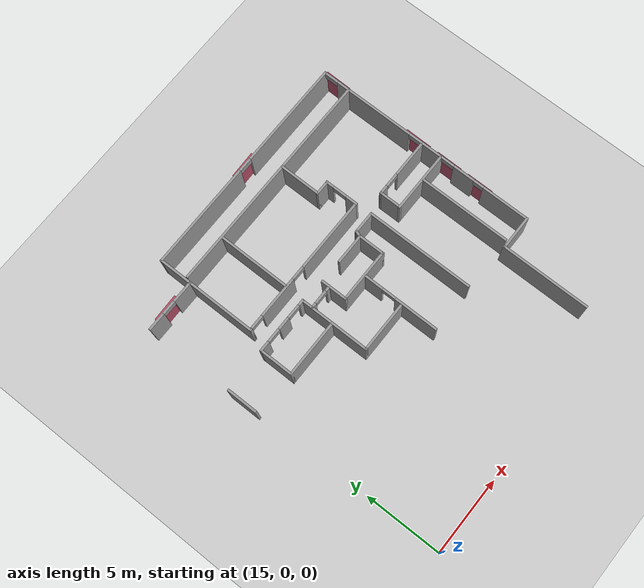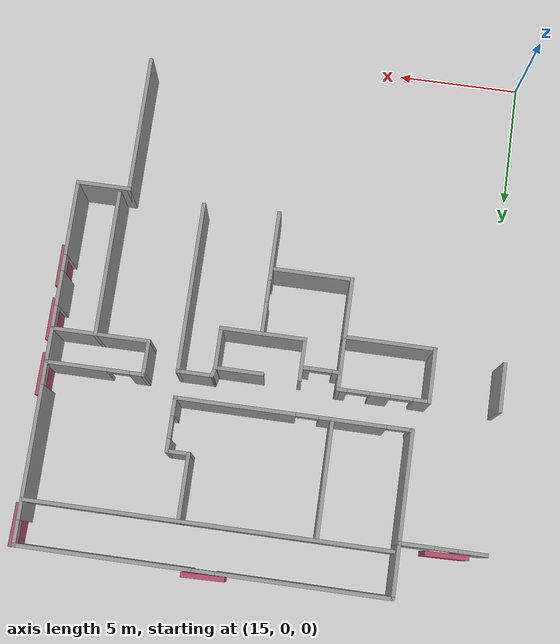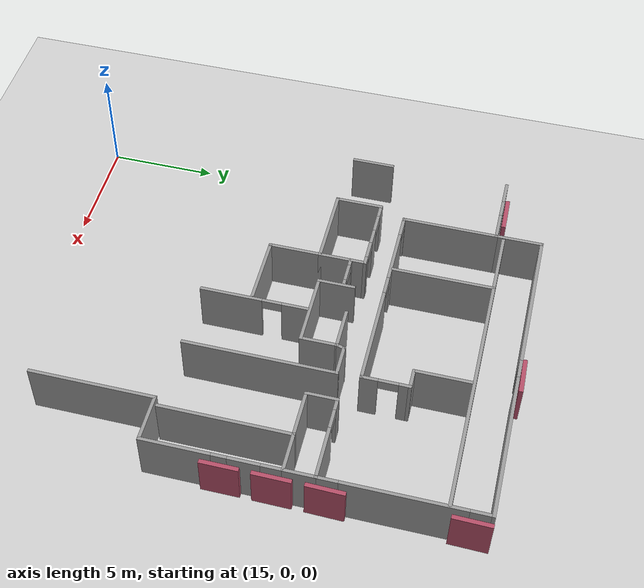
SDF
<sdf version="1.6">
 <world name="default">
  <model name="ground_plane">
   <static>1</static>
   <link name="link">
    <collision name="collision">
     <geometry><plane><normal>0 0 1</normal><size>100 100</size></plane></geometry>
     <surface><friction><ode><mu>100</mu><mu2>50</mu2></ode></friction></surface>
    </collision>
    <visual name="visual">
     <cast_shadows>0</cast_shadows>
     <geometry><plane><normal>0 0 1</normal><size>100 100</size></plane></geometry>
     <material>
      <script><uri>file://media/materials/scripts/gazebo.material</uri><name>Gazebo/Grey</name></script>
     </material>
    </visual>
   </link>
  </model>
  <model name="fin_se1f1.sdf">
   <pose>1.8125 -2.2901 0 0 -0 0</pose>
   <link name="Wall_12">
    <collision name="Wall_12_Collision">
     <geometry><box><size>5.75 0.15 2.5</size></box></geometry>
     <pose>0 0 1.25 0 -0 0</pose>
    </collision>
    <visual name="Wall_12_Visual">
     <pose>0 0 1.25 0 -0 0</pose>
     <geometry><box><size>5.75 0.15 2.5</size></box></geometry>
     <material>
      <script><uri>file://media/materials/scripts/gazebo.material</uri><name>Gazebo/Grey</name></script>
      <ambient>1 1 1 1</ambient>
     </material>
     <meta><layer>0</layer></meta>
    </visual>
    <pose>28.6504 6.82457 0 0 -0 1.5708</pose>
   </link>
   <link name="Wall_13">
    <collision name="Wall_13_Collision">
     <geometry><box><size>2.25 0.15 2.5</size></box></geometry>
     <pose>0 0 1.25 0 -0 0</pose>
    </collision>
    <visual name="Wall_13_Visual">
     <pose>0 0 1.25 0 -0 0</pose>
     <geometry><box><size>2.25 0.15 2.5</size></box></geometry>
     <material>
      <script><uri>file://media/materials/scripts/gazebo.material</uri><name>Gazebo/Grey</name></script>
      <ambient>1 1 1 1</ambient>
     </material>
     <meta><layer>0</layer></meta>
    </visual>
    <pose>29.7004 9.62457 0 0 -0 0</pose>
   </link>
   <link name="Wall_140">
    <collision name="Wall_140_Collision">
     <geometry><box><size>2 0.15 2.5</size></box></geometry>
     <pose>0 0 1.25 0 -0 0</pose>
    </collision>
    <visual name="Wall_140_Visual">
     <pose>0 0 1.25 0 -0 0</pose>
     <geometry><box><size>2 0.15 2.5</size></box></geometry>
     <material>
      <script><uri>file://media/materials/scripts/gazebo.material</uri><name>Gazebo/Grey</name></script>
      <ambient>1 1 1 1</ambient>
     </material>
     <meta><layer>0</layer></meta>
    </visual>
    <pose>12.848 15.6146 0 0 -0 1.5708</pose>
   </link>
   <link name="Wall_16">
    <pose>30.7504 16.9246 0 0 -0 1.5708</pose>
    <visual name="Wall_16_Visual_0">
     <pose>-5.81054 0 1.25 0 -0 0</pose>
     <geometry><box><size>3.12893 0.15 2.5</size></box></geometry>
     <material>
      <script><uri>file://media/materials/scripts/gazebo.material</uri><name>Gazebo/Grey</name></script>
      <ambient>1 1 1 1</ambient>
     </material>
     <meta><layer>0</layer></meta>
    </visual>
    <collision name="Wall_16_Collision_0">
     <geometry><box><size>3.12893 0.15 2.5</size></box></geometry>
     <pose>-5.81054 0 1.25 0 -0 0</pose>
    </collision>
    <visual name="Wall_16_Visual_1">
     <pose>-2.86079 0 1.25 0 -0 0</pose>
     <geometry><box><size>1.41306 0.15 2.5</size></box></geometry>
     <material>
      <script><uri>file://media/materials/scripts/gazebo.material</uri><name>Gazebo/Grey</name></script>
      <ambient>1 1 1 1</ambient>
     </material>
     <meta><layer>0</layer></meta>
    </visual>
    <collision name="Wall_16_Collision_1">
     <geometry><box><size>1.41306 0.15 2.5</size></box></geometry>
     <pose>-2.86079 0 1.25 0 -0 0</pose>
    </collision>
    <visual name="Wall_16_Visual_2">
     <pose>-0.547733 0 1.25 0 -0 0</pose>
     <geometry><box><size>1.41306 0.15 2.5</size></box></geometry>
     <material>
      <script><uri>file://media/materials/scripts/gazebo.material</uri><name>Gazebo/Grey</name></script>
      <ambient>1 1 1 1</ambient>
     </material>
     <meta><layer>0</layer></meta>
    </visual>
    <collision name="Wall_16_Collision_2">
     <geometry><box><size>1.41306 0.15 2.5</size></box></geometry>
     <pose>-0.547733 0 1.25 0 -0 0</pose>
    </collision>
    <visual name="Wall_16_Visual_3">
     <pose>3.70629 0 1.25 0 -0 0</pose>
     <geometry><box><size>5.29498 0.15 2.5</size></box></geometry>
     <material>
      <script><uri>file://media/materials/scripts/gazebo.material</uri><name>Gazebo/Grey</name></script>
      <ambient>1 1 1 1</ambient>
     </material>
     <meta><layer>0</layer></meta>
    </visual>
    <collision name="Wall_16_Collision_3">
     <geometry><box><size>5.29498 0.15 2.5</size></box></geometry>
     <pose>3.70629 0 1.25 0 -0 0</pose>
    </collision>
    <visual name="Wall_16_Visual_4">
     <pose>7.31439 0 1.25 0 -0 0</pose>
     <geometry><box><size>0.121222 0.15 2.5</size></box></geometry>
     <material>
      <script><uri>file://media/materials/scripts/gazebo.material</uri><name>Gazebo/Grey</name></script>
      <ambient>1 1 1 1</ambient>
     </material>
     <meta><layer>0</layer></meta>
    </visual>
    <collision name="Wall_16_Collision_4">
     <geometry><box><size>0.121222 0.15 2.5</size></box></geometry>
     <pose>7.31439 0 1.25 0 -0 0</pose>
    </collision>
    <visual name="Wall_16_Visual_5">
     <pose>-3.9067 0 2.25 0 -0 0</pose>
     <geometry><box><size>0.678751 0.15 0.5</size></box></geometry>
     <material>
      <script><uri>file://media/materials/scripts/gazebo.material</uri><name>Gazebo/Grey</name></script>
      <ambient>1 1 1 1</ambient>
     </material>
     <meta><layer>0</layer></meta>
    </visual>
    <collision name="Wall_16_Collision_5">
     <geometry><box><size>0.678751 0.15 0.5</size></box></geometry>
     <pose>-3.9067 0 2.25 0 -0 0</pose>
    </collision>
    <visual name="Wall_16_Visual_6">
     <pose>-1.70426 0 2.25 0 -0 0</pose>
     <geometry><box><size>0.9 0.15 0.5</size></box></geometry>
     <material>
      <script><uri>file://media/materials/scripts/gazebo.material</uri><name>Gazebo/Grey</name></script>
      <ambient>1 1 1 1</ambient>
     </material>
     <meta><layer>0</layer></meta>
    </visual>
    <collision name="Wall_16_Collision_6">
     <geometry><box><size>0.9 0.15 0.5</size></box></geometry>
     <pose>-1.70426 0 2.25 0 -0 0</pose>
    </collision>
    <visual name="Wall_16_Visual_7">
     <pose>0.608797 0 2.25 0 -0 0</pose>
     <geometry><box><size>0.9 0.15 0.5</size></box></geometry>
     <material>
      <script><uri>file://media/materials/scripts/gazebo.material</uri><name>Gazebo/Grey</name></script>
      <ambient>1 1 1 1</ambient>
     </material>
     <meta><layer>0</layer></meta>
    </visual>
    <collision name="Wall_16_Collision_7">
     <geometry><box><size>0.9 0.15 0.5</size></box></geometry>
     <pose>0.608797 0 2.25 0 -0 0</pose>
    </collision>
    <visual name="Wall_16_Visual_8">
     <pose>6.80378 0 2.25 0 -0 0</pose>
     <geometry><box><size>0.9 0.15 0.5</size></box></geometry>
     <material>
      <script><uri>file://media/materials/scripts/gazebo.material</uri><name>Gazebo/Grey</name></script>
      <ambient>1 1 1 1</ambient>
     </material>
     <meta><layer>0</layer></meta>
    </visual>
    <collision name="Wall_16_Collision_8">
     <geometry><box><size>0.9 0.15 0.5</size></box></geometry>
     <pose>6.80378 0 2.25 0 -0 0</pose>
    </collision>
   </link>
   <link name="Wall_17">
    <pose>23.4504 24.2246 0 0 -0 3.14159</pose>
    <visual name="Wall_17_Visual_0">
     <pose>-3.90372 0 1.25 0 -0 0</pose>
     <geometry><box><size>6.94256 0.15 2.5</size></box></geometry>
     <material>
      <script><uri>file://media/materials/scripts/gazebo.material</uri><name>Gazebo/Grey</name></script>
      <ambient>1 1 1 1</ambient>
     </material>
     <meta><layer>0</layer></meta>
    </visual>
    <collision name="Wall_17_Collision_0">
     <geometry><box><size>6.94256 0.15 2.5</size></box></geometry>
     <pose>-3.90372 0 1.25 0 -0 0</pose>
    </collision>
    <visual name="Wall_17_Visual_1">
     <pose>3.92128 0 1.25 0 -0 0</pose>
     <geometry><box><size>6.90744 0.15 2.5</size></box></geometry>
     <material>
      <script><uri>file://media/materials/scripts/gazebo.material</uri><name>Gazebo/Grey</name></script>
      <ambient>1 1 1 1</ambient>
     </material>
     <meta><layer>0</layer></meta>
    </visual>
    <collision name="Wall_17_Collision_1">
     <geometry><box><size>6.90744 0.15 2.5</size></box></geometry>
     <pose>3.92128 0 1.25 0 -0 0</pose>
    </collision>
    <visual name="Wall_17_Visual_2">
     <pose>0.017557 0 2.25 0 -0 0</pose>
     <geometry><box><size>0.9 0.15 0.5</size></box></geometry>
     <material>
      <script><uri>file://media/materials/scripts/gazebo.material</uri><name>Gazebo/Grey</name></script>
      <ambient>1 1 1 1</ambient>
     </material>
     <meta><layer>0</layer></meta>
    </visual>
    <collision name="Wall_17_Collision_2">
     <geometry><box><size>0.9 0.15 0.5</size></box></geometry>
     <pose>0.017557 0 2.25 0 -0 0</pose>
    </collision>
   </link>
   <link name="Wall_18">
    <collision name="Wall_18_Collision">
     <geometry><box><size>2.25 0.15 2.5</size></box></geometry>
     <pose>0 0 1.25 0 -0 0</pose>
    </collision>
    <visual name="Wall_18_Visual">
     <pose>0 0 1.25 0 -0 0</pose>
     <geometry><box><size>2.25 0.15 2.5</size></box></geometry>
     <material>
      <script><uri>file://media/materials/scripts/gazebo.material</uri><name>Gazebo/Grey</name></script>
      <ambient>1 1 1 1</ambient>
     </material>
     <meta><layer>0</layer></meta>
    </visual>
    <pose>16.1504 23.1746 0 0 0 -1.5708</pose>
   </link>
   <link name="Wall_19">
    <pose>14.4754 22.1246 0 0 -0 3.14159</pose>
    <visual name="Wall_19_Visual_0">
     <pose>-1.03305 0 1.25 0 -0 0</pose>
     <geometry><box><size>1.43389 0.15 2.5</size></box></geometry>
     <material>
      <script><uri>file://media/materials/scripts/gazebo.material</uri><name>Gazebo/Grey</name></script>
      <ambient>1 1 1 1</ambient>
     </material>
     <meta><layer>0</layer></meta>
    </visual>
    <collision name="Wall_19_Collision_0">
     <geometry><box><size>1.43389 0.15 2.5</size></box></geometry>
     <pose>-1.03305 0 1.25 0 -0 0</pose>
    </collision>
    <visual name="Wall_19_Visual_1">
     <pose>1.16695 0 1.25 0 -0 0</pose>
     <geometry><box><size>1.16611 0.15 2.5</size></box></geometry>
     <material>
      <script><uri>file://media/materials/scripts/gazebo.material</uri><name>Gazebo/Grey</name></script>
      <ambient>1 1 1 1</ambient>
     </material>
     <meta><layer>0</layer></meta>
    </visual>
    <collision name="Wall_19_Collision_1">
     <geometry><box><size>1.16611 0.15 2.5</size></box></geometry>
     <pose>1.16695 0 1.25 0 -0 0</pose>
    </collision>
    <visual name="Wall_19_Visual_2">
     <pose>0.133892 0 2.25 0 -0 0</pose>
     <geometry><box><size>0.9 0.15 0.5</size></box></geometry>
     <material>
      <script><uri>file://media/materials/scripts/gazebo.material</uri><name>Gazebo/Grey</name></script>
      <ambient>1 1 1 1</ambient>
     </material>
     <meta><layer>0</layer></meta>
    </visual>
    <collision name="Wall_19_Collision_2">
     <geometry><box><size>0.9 0.15 0.5</size></box></geometry>
     <pose>0.133892 0 2.25 0 -0 0</pose>
    </collision>
   </link>
   <link name="Wall_233">
    <pose>19.9645 15.9042 0 0 -0 0</pose>
    <visual name="Wall_233_Visual_0">
     <pose>-0.585512 0 1.25 0 -0 0</pose>
     <geometry><box><size>0.328976 0.15 2.5</size></box></geometry>
     <material>
      <script><uri>file://media/materials/scripts/gazebo.material</uri><name>Gazebo/Grey</name></script>
      <ambient>1 1 1 1</ambient>
     </material>
     <meta><layer>0</layer></meta>
    </visual>
    <collision name="Wall_233_Collision_0">
     <geometry><box><size>0.328976 0.15 2.5</size></box></geometry>
     <pose>-0.585512 0 1.25 0 -0 0</pose>
    </collision>
    <visual name="Wall_233_Visual_1">
     <pose>0.614488 0 1.25 0 -0 0</pose>
     <geometry><box><size>0.271024 0.15 2.5</size></box></geometry>
     <material>
      <script><uri>file://media/materials/scripts/gazebo.material</uri><name>Gazebo/Grey</name></script>
      <ambient>1 1 1 1</ambient>
     </material>
     <meta><layer>0</layer></meta>
    </visual>
    <collision name="Wall_233_Collision_1">
     <geometry><box><size>0.271024 0.15 2.5</size></box></geometry>
     <pose>0.614488 0 1.25 0 -0 0</pose>
    </collision>
    <visual name="Wall_233_Visual_2">
     <pose>0.028976 0 2.25 0 -0 0</pose>
     <geometry><box><size>0.9 0.15 0.5</size></box></geometry>
     <material>
      <script><uri>file://media/materials/scripts/gazebo.material</uri><name>Gazebo/Grey</name></script>
      <ambient>1 1 1 1</ambient>
     </material>
     <meta><layer>0</layer></meta>
    </visual>
    <collision name="Wall_233_Collision_2">
     <geometry><box><size>0.9 0.15 0.5</size></box></geometry>
     <pose>0.028976 0 2.25 0 -0 0</pose>
    </collision>
   </link>
   <link name="Wall_32">
    <collision name="Wall_32_Collision">
     <geometry><box><size>4 0.15 2.5</size></box></geometry>
     <pose>0 0 1.25 0 -0 0</pose>
    </collision>
    <visual name="Wall_32_Visual">
     <pose>0 0 1.25 0 -0 0</pose>
     <geometry><box><size>4 0.15 2.5</size></box></geometry>
     <material>
      <script><uri>file://media/materials/scripts/gazebo.material</uri><name>Gazebo/Grey</name></script>
      <ambient>1 1 1 1</ambient>
     </material>
     <meta><layer>0</layer></meta>
    </visual>
    <pose>28.8116 15.7048 0 0 -0 3.14159</pose>
   </link>
   <link name="Wall_33">
    <collision name="Wall_33_Collision">
     <geometry><box><size>1.5 0.15 2.5</size></box></geometry>
     <pose>0 0 1.25 0 -0 0</pose>
    </collision>
    <visual name="Wall_33_Visual">
     <pose>0 0 1.25 0 -0 0</pose>
     <geometry><box><size>1.5 0.15 2.5</size></box></geometry>
     <material>
      <script><uri>file://media/materials/scripts/gazebo.material</uri><name>Gazebo/Grey</name></script>
      <ambient>1 1 1 1</ambient>
     </material>
     <meta><layer>0</layer></meta>
    </visual>
    <pose>26.8866 16.3798 0 0 -0 1.5708</pose>
   </link>
   <link name="Wall_34">
    <pose>28.8116 17.0548 0 0 -0 0</pose>
    <visual name="Wall_34_Visual_0">
     <pose>-1.6918 0 1.25 0 -0 0</pose>
     <geometry><box><size>0.616404 0.15 2.5</size></box></geometry>
     <material>
      <script><uri>file://media/materials/scripts/gazebo.material</uri><name>Gazebo/Grey</name></script>
      <ambient>1 1 1 1</ambient>
     </material>
     <meta><layer>0</layer></meta>
    </visual>
    <collision name="Wall_34_Collision_0">
     <geometry><box><size>0.616404 0.15 2.5</size></box></geometry>
     <pose>-1.6918 0 1.25 0 -0 0</pose>
    </collision>
    <visual name="Wall_34_Visual_1">
     <pose>0.758202 0 1.25 0 -0 0</pose>
     <geometry><box><size>2.4836 0.15 2.5</size></box></geometry>
     <material>
      <script><uri>file://media/materials/scripts/gazebo.material</uri><name>Gazebo/Grey</name></script>
      <ambient>1 1 1 1</ambient>
     </material>
     <meta><layer>0</layer></meta>
    </visual>
    <collision name="Wall_34_Collision_1">
     <geometry><box><size>2.4836 0.15 2.5</size></box></geometry>
     <pose>0.758202 0 1.25 0 -0 0</pose>
    </collision>
    <visual name="Wall_34_Visual_2">
     <pose>-0.933596 0 2.25 0 -0 0</pose>
     <geometry><box><size>0.9 0.15 0.5</size></box></geometry>
     <material>
      <script><uri>file://media/materials/scripts/gazebo.material</uri><name>Gazebo/Grey</name></script>
      <ambient>1 1 1 1</ambient>
     </material>
     <meta><layer>0</layer></meta>
    </visual>
    <collision name="Wall_34_Collision_2">
     <geometry><box><size>0.9 0.15 0.5</size></box></geometry>
     <pose>-0.933596 0 2.25 0 -0 0</pose>
    </collision>
   </link>
   <link name="Wall_36">
    <collision name="Wall_36_Collision">
     <geometry><box><size>6 0.15 2.5</size></box></geometry>
     <pose>0 0 1.25 0 -0 0</pose>
    </collision>
    <visual name="Wall_36_Visual">
     <pose>0 0 1.25 0 -0 0</pose>
     <geometry><box><size>6 0.15 2.5</size></box></geometry>
     <material>
      <script><uri>file://media/materials/scripts/gazebo.material</uri><name>Gazebo/Grey</name></script>
      <ambient>1 1 1 1</ambient>
     </material>
     <meta><layer>0</layer></meta>
    </visual>
    <pose>29.0138 12.7798 0 0 0 -1.5708</pose>
   </link>
   <link name="Wall_38">
    <pose>17.4309 16.5662 0 0 -0 3.14159</pose>
    <visual name="Wall_38_Visual_0">
     <pose>-1.65937 0 1.25 0 -0 0</pose>
     <geometry><box><size>0.431262 0.15 2.5</size></box></geometry>
     <material>
      <script><uri>file://media/materials/scripts/gazebo.material</uri><name>Gazebo/Grey</name></script>
      <ambient>1 1 1 1</ambient>
     </material>
     <meta><layer>0</layer></meta>
    </visual>
    <collision name="Wall_38_Collision_0">
     <geometry><box><size>0.431262 0.15 2.5</size></box></geometry>
     <pose>-1.65937 0 1.25 0 -0 0</pose>
    </collision>
    <visual name="Wall_38_Visual_1">
     <pose>-0.138911 0 1.25 0 -0 0</pose>
     <geometry><box><size>0.809654 0.15 2.5</size></box></geometry>
     <material>
      <script><uri>file://media/materials/scripts/gazebo.material</uri><name>Gazebo/Grey</name></script>
      <ambient>1 1 1 1</ambient>
     </material>
     <meta><layer>0</layer></meta>
    </visual>
    <collision name="Wall_38_Collision_1">
     <geometry><box><size>0.809654 0.15 2.5</size></box></geometry>
     <pose>-0.138911 0 1.25 0 -0 0</pose>
    </collision>
    <visual name="Wall_38_Visual_2">
     <pose>1.52046 0 1.25 0 -0 0</pose>
     <geometry><box><size>0.709084 0.15 2.5</size></box></geometry>
     <material>
      <script><uri>file://media/materials/scripts/gazebo.material</uri><name>Gazebo/Grey</name></script>
      <ambient>1 1 1 1</ambient>
     </material>
     <meta><layer>0</layer></meta>
    </visual>
    <collision name="Wall_38_Collision_2">
     <geometry><box><size>0.709084 0.15 2.5</size></box></geometry>
     <pose>1.52046 0 1.25 0 -0 0</pose>
    </collision>
    <visual name="Wall_38_Visual_3">
     <pose>-0.993738 0 2.25 0 -0 0</pose>
     <geometry><box><size>0.9 0.15 0.5</size></box></geometry>
     <material>
      <script><uri>file://media/materials/scripts/gazebo.material</uri><name>Gazebo/Grey</name></script>
      <ambient>1 1 1 1</ambient>
     </material>
     <meta><layer>0</layer></meta>
    </visual>
    <collision name="Wall_38_Collision_3">
     <geometry><box><size>0.9 0.15 0.5</size></box></geometry>
     <pose>-0.993738 0 2.25 0 -0 0</pose>
    </collision>
    <visual name="Wall_38_Visual_4">
     <pose>0.715916 0 2.25 0 -0 0</pose>
     <geometry><box><size>0.9 0.15 0.5</size></box></geometry>
     <material>
      <script><uri>file://media/materials/scripts/gazebo.material</uri><name>Gazebo/Grey</name></script>
      <ambient>1 1 1 1</ambient>
     </material>
     <meta><layer>0</layer></meta>
    </visual>
    <collision name="Wall_38_Collision_4">
     <geometry><box><size>0.9 0.15 0.5</size></box></geometry>
     <pose>0.715916 0 2.25 0 -0 0</pose>
    </collision>
   </link>
   <link name="Wall_39">
    <collision name="Wall_39_Collision">
     <geometry><box><size>2.25 0.15 2.5</size></box></geometry>
     <pose>0 0 1.25 0 -0 0</pose>
    </collision>
    <visual name="Wall_39_Visual">
     <pose>0 0 1.25 0 -0 0</pose>
     <geometry><box><size>2.25 0.15 2.5</size></box></geometry>
     <material>
      <script><uri>file://media/materials/scripts/gazebo.material</uri><name>Gazebo/Grey</name></script>
      <ambient>1 1 1 1</ambient>
     </material>
     <meta><layer>0</layer></meta>
    </visual>
    <pose>15.6309 15.5162 0 0 0 -1.5708</pose>
   </link>
   <link name="Wall_40">
    <collision name="Wall_40_Collision">
     <geometry><box><size>3.75 0.15 2.5</size></box></geometry>
     <pose>0 0 1.25 0 -0 0</pose>
    </collision>
    <visual name="Wall_40_Visual">
     <pose>0 0 1.25 0 -0 0</pose>
     <geometry><box><size>3.75 0.15 2.5</size></box></geometry>
     <material>
      <script><uri>file://media/materials/scripts/gazebo.material</uri><name>Gazebo/Grey</name></script>
      <ambient>1 1 1 1</ambient>
     </material>
     <meta><layer>0</layer></meta>
    </visual>
    <pose>17.4309 14.4662 0 0 -0 0</pose>
   </link>
   <link name="Wall_41">
    <collision name="Wall_41_Collision">
     <geometry><box><size>2.25 0.15 2.5</size></box></geometry>
     <pose>0 0 1.25 0 -0 0</pose>
    </collision>
    <visual name="Wall_41_Visual">
     <pose>0 0 1.25 0 -0 0</pose>
     <geometry><box><size>2.25 0.15 2.5</size></box></geometry>
     <material>
      <script><uri>file://media/materials/scripts/gazebo.material</uri><name>Gazebo/Grey</name></script>
      <ambient>1 1 1 1</ambient>
     </material>
     <meta><layer>0</layer></meta>
    </visual>
    <pose>19.2309 15.5162 0 0 -0 1.5708</pose>
   </link>
   <link name="Wall_43">
    <collision name="Wall_43_Collision">
     <geometry><box><size>1.75 0.15 2.5</size></box></geometry>
     <pose>0 0 1.25 0 -0 0</pose>
    </collision>
    <visual name="Wall_43_Visual">
     <pose>0 0 1.25 0 -0 0</pose>
     <geometry><box><size>1.75 0.15 2.5</size></box></geometry>
     <material>
      <script><uri>file://media/materials/scripts/gazebo.material</uri><name>Gazebo/Grey</name></script>
      <ambient>1 1 1 1</ambient>
     </material>
     <meta><layer>0</layer></meta>
    </visual>
    <pose>20.7691 15.5816 0 0 0 -1.5708</pose>
   </link>
   <link name="Wall_44">
    <collision name="Wall_44_Collision">
     <geometry><box><size>3.5 0.15 2.5</size></box></geometry>
     <pose>0 0 1.25 0 -0 0</pose>
    </collision>
    <visual name="Wall_44_Visual">
     <pose>0 0 1.25 0 -0 0</pose>
     <geometry><box><size>3.5 0.15 2.5</size></box></geometry>
     <material>
      <script><uri>file://media/materials/scripts/gazebo.material</uri><name>Gazebo/Grey</name></script>
      <ambient>1 1 1 1</ambient>
     </material>
     <meta><layer>0</layer></meta>
    </visual>
    <pose>22.4441 14.7816 0 0 -0 0</pose>
   </link>
   <link name="Wall_45">
    <collision name="Wall_45_Collision">
     <geometry><box><size>1.75 0.15 2.5</size></box></geometry>
     <pose>0 0 1.25 0 -0 0</pose>
    </collision>
    <visual name="Wall_45_Visual">
     <pose>0 0 1.25 0 -0 0</pose>
     <geometry><box><size>1.75 0.15 2.5</size></box></geometry>
     <material>
      <script><uri>file://media/materials/scripts/gazebo.material</uri><name>Gazebo/Grey</name></script>
      <ambient>1 1 1 1</ambient>
     </material>
     <meta><layer>0</layer></meta>
    </visual>
    <pose>24.1191 15.5816 0 0 -0 1.5708</pose>
   </link>
   <link name="Wall_46">
    <collision name="Wall_46_Collision">
     <geometry><box><size>2 0.15 2.5</size></box></geometry>
     <pose>0 0 1.25 0 -0 0</pose>
    </collision>
    <visual name="Wall_46_Visual">
     <pose>0 0 1.25 0 -0 0</pose>
     <geometry><box><size>2 0.15 2.5</size></box></geometry>
     <material>
      <script><uri>file://media/materials/scripts/gazebo.material</uri><name>Gazebo/Grey</name></script>
      <ambient>1 1 1 1</ambient>
     </material>
     <meta><layer>0</layer></meta>
    </visual>
    <pose>23.1941 16.3816 0 0 -0 3.14159</pose>
   </link>
   <link name="Wall_48">
    <collision name="Wall_48_Collision">
     <geometry><box><size>0.5 0.15 2.5</size></box></geometry>
     <pose>0 0 1.25 0 -0 0</pose>
    </collision>
    <visual name="Wall_48_Visual">
     <pose>0 0 1.25 0 -0 0</pose>
     <geometry><box><size>0.5 0.15 2.5</size></box></geometry>
     <material>
      <script><uri>file://media/materials/scripts/gazebo.material</uri><name>Gazebo/Grey</name></script>
      <ambient>1 1 1 1</ambient>
     </material>
     <meta><layer>0</layer></meta>
    </visual>
    <pose>24.1643 16.5507 0 0 -0 1.309</pose>
   </link>
   <link name="Wall_49">
    <collision name="Wall_49_Collision">
     <geometry><box><size>1.5 0.15 2.5</size></box></geometry>
     <pose>0 0 1.25 0 -0 0</pose>
    </collision>
    <visual name="Wall_49_Visual">
     <pose>0 0 1.25 0 -0 0</pose>
     <geometry><box><size>1.5 0.15 2.5</size></box></geometry>
     <material>
      <script><uri>file://media/materials/scripts/gazebo.material</uri><name>Gazebo/Grey</name></script>
      <ambient>1 1 1 1</ambient>
     </material>
     <meta><layer>0</layer></meta>
    </visual>
    <pose>24.8846 16.7197 0 0 -0 0</pose>
   </link>
   <link name="Wall_50">
    <collision name="Wall_50_Collision">
     <geometry><box><size>7 0.15 2.5</size></box></geometry>
     <pose>0 0 1.25 0 -0 0</pose>
    </collision>
    <visual name="Wall_50_Visual">
     <pose>0 0 1.25 0 -0 0</pose>
     <geometry><box><size>7 0.15 2.5</size></box></geometry>
     <material>
      <script><uri>file://media/materials/scripts/gazebo.material</uri><name>Gazebo/Grey</name></script>
      <ambient>1 1 1 1</ambient>
     </material>
     <meta><layer>0</layer></meta>
    </visual>
    <pose>25.5596 13.2947 0 0 0 -1.5708</pose>
   </link>
   <link name="Wall_52">
    <collision name="Wall_52_Collision">
     <geometry><box><size>2.5 0.15 2.5</size></box></geometry>
     <pose>0 0 1.25 0 -0 0</pose>
    </collision>
    <visual name="Wall_52_Visual">
     <pose>0 0 1.25 0 -0 0</pose>
     <geometry><box><size>2.5 0.15 2.5</size></box></geometry>
     <material>
      <script><uri>file://media/materials/scripts/gazebo.material</uri><name>Gazebo/Grey</name></script>
      <ambient>1 1 1 1</ambient>
     </material>
     <meta><layer>0</layer></meta>
    </visual>
    <pose>19.2309 13.2912 0 0 0 -1.5708</pose>
   </link>
   <link name="Wall_53">
    <collision name="Wall_53_Collision">
     <geometry><box><size>3.25 0.15 2.5</size></box></geometry>
     <pose>0 0 1.25 0 -0 0</pose>
    </collision>
    <visual name="Wall_53_Visual">
     <pose>0 0 1.25 0 -0 0</pose>
     <geometry><box><size>3.25 0.15 2.5</size></box></geometry>
     <material>
      <script><uri>file://media/materials/scripts/gazebo.material</uri><name>Gazebo/Grey</name></script>
      <ambient>1 1 1 1</ambient>
     </material>
     <meta><layer>0</layer></meta>
    </visual>
    <pose>20.7809 12.1162 0 0 -0 0</pose>
   </link>
   <link name="Wall_55">
    <pose>22.4918 12.2338 0 0 0 -1.5708</pose>
    <visual name="Wall_55_Visual_0">
     <pose>-1.8821 0 1.25 0 -0 0</pose>
     <geometry><box><size>1.2358 0.15 2.5</size></box></geometry>
     <material>
      <script><uri>file://media/materials/scripts/gazebo.material</uri><name>Gazebo/Grey</name></script>
      <ambient>1 1 1 1</ambient>
     </material>
     <meta><layer>0</layer></meta>
    </visual>
    <collision name="Wall_55_Collision_0">
     <geometry><box><size>1.2358 0.15 2.5</size></box></geometry>
     <pose>-1.8821 0 1.25 0 -0 0</pose>
    </collision>
    <visual name="Wall_55_Visual_1">
     <pose>1.0679 0 1.25 0 -0 0</pose>
     <geometry><box><size>2.8642 0.15 2.5</size></box></geometry>
     <material>
      <script><uri>file://media/materials/scripts/gazebo.material</uri><name>Gazebo/Grey</name></script>
      <ambient>1 1 1 1</ambient>
     </material>
     <meta><layer>0</layer></meta>
    </visual>
    <collision name="Wall_55_Collision_1">
     <geometry><box><size>2.8642 0.15 2.5</size></box></geometry>
     <pose>1.0679 0 1.25 0 -0 0</pose>
    </collision>
    <visual name="Wall_55_Visual_2">
     <pose>-0.814197 0 2.25 0 -0 0</pose>
     <geometry><box><size>0.9 0.15 0.5</size></box></geometry>
     <material>
      <script><uri>file://media/materials/scripts/gazebo.material</uri><name>Gazebo/Grey</name></script>
      <ambient>1 1 1 1</ambient>
     </material>
     <meta><layer>0</layer></meta>
    </visual>
    <collision name="Wall_55_Collision_2">
     <geometry><box><size>0.9 0.15 0.5</size></box></geometry>
     <pose>-0.814197 0 2.25 0 -0 0</pose>
    </collision>
   </link>
   <link name="Wall_57">
    <collision name="Wall_57_Collision">
     <geometry><box><size>4.5 0.15 2.5</size></box></geometry>
     <pose>0 0 1.25 0 -0 0</pose>
    </collision>
    <visual name="Wall_57_Visual">
     <pose>0 0 1.25 0 -0 0</pose>
     <geometry><box><size>4.5 0.15 2.5</size></box></geometry>
     <material>
      <script><uri>file://media/materials/scripts/gazebo.material</uri><name>Gazebo/Grey</name></script>
      <ambient>1 1 1 1</ambient>
     </material>
     <meta><layer>0</layer></meta>
    </visual>
    <pose>16.1504 19.9496 0 0 0 -1.5708</pose>
   </link>
   <link name="Wall_58">
    <pose>20.8254 17.7746 0 0 -0 0</pose>
    <visual name="Wall_58_Visual_0">
     <pose>-4.65524 0 1.25 0 -0 0</pose>
     <geometry><box><size>0.189509 0.15 2.5</size></box></geometry>
     <material>
      <script><uri>file://media/materials/scripts/gazebo.material</uri><name>Gazebo/Grey</name></script>
      <ambient>1 1 1 1</ambient>
     </material>
     <meta><layer>0</layer></meta>
    </visual>
    <collision name="Wall_58_Collision_0">
     <geometry><box><size>0.189509 0.15 2.5</size></box></geometry>
     <pose>-4.65524 0 1.25 0 -0 0</pose>
    </collision>
    <visual name="Wall_58_Visual_1">
     <pose>-2.32038 0 1.25 0 -0 0</pose>
     <geometry><box><size>2.68022 0.15 2.5</size></box></geometry>
     <material>
      <script><uri>file://media/materials/scripts/gazebo.material</uri><name>Gazebo/Grey</name></script>
      <ambient>1 1 1 1</ambient>
     </material>
     <meta><layer>0</layer></meta>
    </visual>
    <collision name="Wall_58_Collision_1">
     <geometry><box><size>2.68022 0.15 2.5</size></box></geometry>
     <pose>-2.32038 0 1.25 0 -0 0</pose>
    </collision>
    <visual name="Wall_58_Visual_2">
     <pose>2.33486 0 1.25 0 -0 0</pose>
     <geometry><box><size>4.83028 0.15 2.5</size></box></geometry>
     <material>
      <script><uri>file://media/materials/scripts/gazebo.material</uri><name>Gazebo/Grey</name></script>
      <ambient>1 1 1 1</ambient>
     </material>
     <meta><layer>0</layer></meta>
    </visual>
    <collision name="Wall_58_Collision_2">
     <geometry><box><size>4.83028 0.15 2.5</size></box></geometry>
     <pose>2.33486 0 1.25 0 -0 0</pose>
    </collision>
    <visual name="Wall_58_Visual_3">
     <pose>-4.11049 0 2.25 0 -0 0</pose>
     <geometry><box><size>0.9 0.15 0.5</size></box></geometry>
     <material>
      <script><uri>file://media/materials/scripts/gazebo.material</uri><name>Gazebo/Grey</name></script>
      <ambient>1 1 1 1</ambient>
     </material>
     <meta><layer>0</layer></meta>
    </visual>
    <collision name="Wall_58_Collision_3">
     <geometry><box><size>0.9 0.15 0.5</size></box></geometry>
     <pose>-4.11049 0 2.25 0 -0 0</pose>
    </collision>
    <visual name="Wall_58_Visual_4">
     <pose>-0.530275 0 2.25 0 -0 0</pose>
     <geometry><box><size>0.9 0.15 0.5</size></box></geometry>
     <material>
      <script><uri>file://media/materials/scripts/gazebo.material</uri><name>Gazebo/Grey</name></script>
      <ambient>1 1 1 1</ambient>
     </material>
     <meta><layer>0</layer></meta>
    </visual>
    <collision name="Wall_58_Collision_4">
     <geometry><box><size>0.9 0.15 0.5</size></box></geometry>
     <pose>-0.530275 0 2.25 0 -0 0</pose>
    </collision>
   </link>
   <link name="Wall_59">
    <pose>25.5004 18.8246 0 0 -0 1.5708</pose>
    <visual name="Wall_59_Visual_0">
     <pose>-0.729127 0 1.25 0 -0 0</pose>
     <geometry><box><size>0.791747 0.15 2.5</size></box></geometry>
     <material>
      <script><uri>file://media/materials/scripts/gazebo.material</uri><name>Gazebo/Grey</name></script>
      <ambient>1 1 1 1</ambient>
     </material>
     <meta><layer>0</layer></meta>
    </visual>
    <collision name="Wall_59_Collision_0">
     <geometry><box><size>0.791747 0.15 2.5</size></box></geometry>
     <pose>-0.729127 0 1.25 0 -0 0</pose>
    </collision>
    <visual name="Wall_59_Visual_1">
     <pose>0.845873 0 1.25 0 -0 0</pose>
     <geometry><box><size>0.558253 0.15 2.5</size></box></geometry>
     <material>
      <script><uri>file://media/materials/scripts/gazebo.material</uri><name>Gazebo/Grey</name></script>
      <ambient>1 1 1 1</ambient>
     </material>
     <meta><layer>0</layer></meta>
    </visual>
    <collision name="Wall_59_Collision_1">
     <geometry><box><size>0.558253 0.15 2.5</size></box></geometry>
     <pose>0.845873 0 1.25 0 -0 0</pose>
    </collision>
    <visual name="Wall_59_Visual_2">
     <pose>0.116747 0 2.25 0 -0 0</pose>
     <geometry><box><size>0.9 0.15 0.5</size></box></geometry>
     <material>
      <script><uri>file://media/materials/scripts/gazebo.material</uri><name>Gazebo/Grey</name></script>
      <ambient>1 1 1 1</ambient>
     </material>
     <meta><layer>0</layer></meta>
    </visual>
    <collision name="Wall_59_Collision_2">
     <geometry><box><size>0.9 0.15 0.5</size></box></geometry>
     <pose>0.116747 0 2.25 0 -0 0</pose>
    </collision>
   </link>
   <link name="Wall_60">
    <collision name="Wall_60_Collision">
     <geometry><box><size>1 0.15 2.5</size></box></geometry>
     <pose>0 0 1.25 0 -0 0</pose>
    </collision>
    <visual name="Wall_60_Visual">
     <pose>0 0 1.25 0 -0 0</pose>
     <geometry><box><size>1 0.15 2.5</size></box></geometry>
     <material>
      <script><uri>file://media/materials/scripts/gazebo.material</uri><name>Gazebo/Grey</name></script>
      <ambient>1 1 1 1</ambient>
     </material>
     <meta><layer>0</layer></meta>
    </visual>
    <pose>25.0754 19.8746 0 0 -0 3.14159</pose>
   </link>
   <link name="Wall_61">
    <collision name="Wall_61_Collision">
     <geometry><box><size>2.75 0.15 2.5</size></box></geometry>
     <pose>0 0 1.25 0 -0 0</pose>
    </collision>
    <visual name="Wall_61_Visual">
     <pose>0 0 1.25 0 -0 0</pose>
     <geometry><box><size>2.75 0.15 2.5</size></box></geometry>
     <material>
      <script><uri>file://media/materials/scripts/gazebo.material</uri><name>Gazebo/Grey</name></script>
      <ambient>1 1 1 1</ambient>
     </material>
     <meta><layer>0</layer></meta>
    </visual>
    <pose>24.6504 21.1746 0 0 -0 1.5708</pose>
   </link>
   <link name="Wall_63">
    <collision name="Wall_63_Collision">
     <geometry><box><size>14.5 0.15 2.5</size></box></geometry>
     <pose>0 0 1.25 0 -0 0</pose>
    </collision>
    <visual name="Wall_63_Visual">
     <pose>0 0 1.25 0 -0 0</pose>
     <geometry><box><size>14.5 0.15 2.5</size></box></geometry>
     <material>
      <script><uri>file://media/materials/scripts/gazebo.material</uri><name>Gazebo/Grey</name></script>
      <ambient>1 1 1 1</ambient>
     </material>
     <meta><layer>0</layer></meta>
    </visual>
    <pose>23.514 22.4729 0 0 -0 0</pose>
   </link>
   <link name="Wall_65">
    <collision name="Wall_65_Collision">
     <geometry><box><size>4.75 0.15 2.5</size></box></geometry>
     <pose>0 0 1.25 0 -0 0</pose>
    </collision>
    <visual name="Wall_65_Visual">
     <pose>0 0 1.25 0 -0 0</pose>
     <geometry><box><size>4.75 0.15 2.5</size></box></geometry>
     <material>
      <script><uri>file://media/materials/scripts/gazebo.material</uri><name>Gazebo/Grey</name></script>
      <ambient>1 1 1 1</ambient>
     </material>
     <meta><layer>0</layer></meta>
    </visual>
    <pose>19.2924 20.1729 0 0 0 -1.5708</pose>
   </link>
   <static>1</static>
  </model>
  <model name="doorOutside_clone_6">
   <link name="link">
    <pose>0.155539 -0.366282 0.216958 0 -0 0</pose>
    <inertial>
     <mass>2.13199</mass>
     <inertia>
      <ixx>0.452656</ixx>
      <ixy>0</ixy>
      <ixz>0</ixz>
      <iyy>0.796738</iyy>
      <iyz>0</iyz>
      <izz>0.699414</izz>
     </inertia>
    </inertial>
    <visual name="visual">
     <geometry><box><size>1.71368 0.198843 2.05986</size></box></geometry>
     <material>
      <script><name>Gazebo/Grey</name><uri>file://media/materials/scripts/gazebo.material</uri></script>
      <ambient>0.7 0.3 0.4 1</ambient>
      <diffuse>0.7 0.7 0.7 1</diffuse>
      <specular>0.01 0.01 0.01 1</specular>
      <emissive>0 0 0 1</emissive>
      <shader type="vertex"><normal_map>__default__</normal_map></shader>
      <lighting>0</lighting>
     </material>
    </visual>
    <collision name="collision">
     <geometry><box><size>1.71368 0.198843 2.05986</size></box></geometry>
     <surface>
      <friction>
       <ode><mu>1</mu><mu2>1</mu2><fdir1>0 0 0</fdir1><slip1>0</slip1><slip2>0</slip2></ode>
       <torsional>
        <coefficient>1</coefficient>
        <patch_radius>0</patch_radius>
        <surface_radius>0</surface_radius>
        <use_patch_radius>1</use_patch_radius>
        <ode><slip>0</slip></ode>
       </torsional>
      </friction>
      <bounce><restitution_coefficient>0</restitution_coefficient><threshold>1e+06</threshold></bounce>
      <contact>
       <collide_without_contact>0</collide_without_contact>
       <collide_without_contact_bitmask>1</collide_without_contact_bitmask>
       <collide_bitmask>1</collide_bitmask>
       <ode>
        <soft_cfm>0</soft_cfm>
        <soft_erp>0.2</soft_erp>
        <kp>1e+13</kp>
        <kd>1</kd>
        <max_vel>0.01</max_vel>
        <min_depth>0</min_depth>
       </ode>
       <bullet>
        <split_impulse>1</split_impulse>
        <split_impulse_penetration_threshold>-0.01</split_impulse_penetration_threshold>
        <soft_cfm>0</soft_cfm>
        <soft_erp>0.2</soft_erp>
        <kp>1e+13</kp>
        <kd>1</kd>
       </bullet>
      </contact>
     </surface>
    </collision>
   </link>
   <static>1</static>
   <pose>15.8897 20.4131 0.812972 0 -0 0.023072</pose>
  </model>
  <model name="doorOutside_clone_7">
   <link name="link">
    <pose>0.155539 -0.366282 0.216958 0 -0 0</pose>
    <inertial>
     <mass>2.13199</mass>
     <inertia>
      <ixx>0.452656</ixx>
      <ixy>0</ixy>
      <ixz>0</ixz>
      <iyy>0.796738</iyy>
      <iyz>0</iyz>
      <izz>0.699414</izz>
     </inertia>
    </inertial>
    <visual name="visual">
     <geometry><box><size>1.71368 0.198843 2.05986</size></box></geometry>
     <material>
      <script><name>Gazebo/Grey</name><uri>file://media/materials/scripts/gazebo.material</uri></script>
      <ambient>0.7 0.3 0.4 1</ambient>
      <diffuse>0.7 0.7 0.7 1</diffuse>
      <specular>0.01 0.01 0.01 1</specular>
      <emissive>0 0 0 1</emissive>
      <shader type="vertex"><normal_map>__default__</normal_map></shader>
      <lighting>0</lighting>
     </material>
    </visual>
    <collision name="collision">
     <geometry><box><size>1.71368 0.198843 2.05986</size></box></geometry>
     <surface>
      <friction>
       <ode><mu>1</mu><mu2>1</mu2><fdir1>0 0 0</fdir1><slip1>0</slip1><slip2>0</slip2></ode>
       <torsional>
        <coefficient>1</coefficient>
        <patch_radius>0</patch_radius>
        <surface_radius>0</surface_radius>
        <use_patch_radius>1</use_patch_radius>
        <ode><slip>0</slip></ode>
       </torsional>
      </friction>
      <bounce><restitution_coefficient>0</restitution_coefficient><threshold>1e+06</threshold></bounce>
      <contact>
       <collide_without_contact>0</collide_without_contact>
       <collide_without_contact_bitmask>1</collide_without_contact_bitmask>
       <collide_bitmask>1</collide_bitmask>
       <ode>
        <soft_cfm>0</soft_cfm>
        <soft_erp>0.2</soft_erp>
        <kp>1e+13</kp>
        <kd>1</kd>
        <max_vel>0.01</max_vel>
        <min_depth>0</min_depth>
       </ode>
       <bullet>
        <split_impulse>1</split_impulse>
        <split_impulse_penetration_threshold>-0.01</split_impulse_penetration_threshold>
        <soft_cfm>0</soft_cfm>
        <soft_erp>0.2</soft_erp>
        <kp>1e+13</kp>
        <kd>1</kd>
       </bullet>
      </contact>
     </surface>
    </collision>
   </link>
   <static>1</static>
   <pose>25.0895 22.499 0.812972 0 1e-06 0.023096</pose>
  </model>
  <model name="doorOutside_clone_8">
   <link name="link">
    <pose>0.155539 -0.366282 0.216958 0 -0 0</pose>
    <inertial>
     <mass>2.13199</mass>
     <inertia>
      <ixx>0.452656</ixx>
      <ixy>0</ixy>
      <ixz>0</ixz>
      <iyy>0.796738</iyy>
      <iyz>0</iyz>
      <izz>0.699414</izz>
     </inertia>
    </inertial>
    <visual name="visual">
     <geometry><box><size>1.71368 0.198843 2.05986</size></box></geometry>
     <material>
      <script><name>Gazebo/Grey</name><uri>file://media/materials/scripts/gazebo.material</uri></script>
      <ambient>0.7 0.3 0.4 1</ambient>
      <diffuse>0.7 0.7 0.7 1</diffuse>
      <specular>0.01 0.01 0.01 1</specular>
      <emissive>0 0 0 1</emissive>
      <shader type="vertex"><normal_map>__default__</normal_map></shader>
      <lighting>0</lighting>
     </material>
    </visual>
    <collision name="collision">
     <geometry><box><size>1.71368 0.198843 2.05986</size></box></geometry>
     <surface>
      <friction>
       <ode><mu>1</mu><mu2>1</mu2><fdir1>0 0 0</fdir1><slip1>0</slip1><slip2>0</slip2></ode>
       <torsional>
        <coefficient>1</coefficient>
        <patch_radius>0</patch_radius>
        <surface_radius>0</surface_radius>
        <use_patch_radius>1</use_patch_radius>
        <ode><slip>0</slip></ode>
       </torsional>
      </friction>
      <bounce><restitution_coefficient>0</restitution_coefficient><threshold>1e+06</threshold></bounce>
      <contact>
       <collide_without_contact>0</collide_without_contact>
       <collide_without_contact_bitmask>1</collide_without_contact_bitmask>
       <collide_bitmask>1</collide_bitmask>
       <ode>
        <soft_cfm>0</soft_cfm>
        <soft_erp>0.2</soft_erp>
        <kp>1e+13</kp>
        <kd>1</kd>
        <max_vel>0.01</max_vel>
        <min_depth>0</min_depth>
       </ode>
       <bullet>
        <split_impulse>1</split_impulse>
        <split_impulse_penetration_threshold>-0.01</split_impulse_penetration_threshold>
        <soft_cfm>0</soft_cfm>
        <soft_erp>0.2</soft_erp>
        <kp>1e+13</kp>
        <kd>1</kd>
       </bullet>
      </contact>
     </surface>
    </collision>
   </link>
   <static>1</static>
   <pose>32.3828 21.0196 0.812962 -1e-06 5e-06 1.55393</pose>
  </model>
  <model name="doorOutside_clone_8_clone">
   <link name="link">
    <pose>0.155539 -0.366282 0.216958 0 -0 0</pose>
    <inertial>
     <mass>2.13199</mass>
     <inertia>
      <ixx>0.452656</ixx>
      <ixy>0</ixy>
      <ixz>0</ixz>
      <iyy>0.796738</iyy>
      <iyz>0</iyz>
      <izz>0.699414</izz>
     </inertia>
    </inertial>
    <visual name="visual">
     <geometry><box><size>1.71368 0.198843 2.05986</size></box></geometry>
     <material>
      <script><name>Gazebo/Grey</name><uri>file://media/materials/scripts/gazebo.material</uri></script>
      <ambient>0.7 0.3 0.4 1</ambient>
      <diffuse>0.7 0.7 0.7 1</diffuse>
      <specular>0.01 0.01 0.01 1</specular>
      <emissive>0 0 0 1</emissive>
      <shader type="vertex"><normal_map>__default__</normal_map></shader>
      <lighting>0</lighting>
     </material>
    </visual>
    <collision name="collision">
     <geometry><box><size>1.71368 0.198843 2.05986</size></box></geometry>
     <surface>
      <friction>
       <ode><mu>1</mu><mu2>1</mu2><fdir1>0 0 0</fdir1><slip1>0</slip1><slip2>0</slip2></ode>
       <torsional>
        <coefficient>1</coefficient>
        <patch_radius>0</patch_radius>
        <surface_radius>0</surface_radius>
        <use_patch_radius>1</use_patch_radius>
        <ode><slip>0</slip></ode>
       </torsional>
      </friction>
      <bounce><restitution_coefficient>0</restitution_coefficient><threshold>1e+06</threshold></bounce>
      <contact>
       <collide_without_contact>0</collide_without_contact>
       <collide_without_contact_bitmask>1</collide_without_contact_bitmask>
       <collide_bitmask>1</collide_bitmask>
       <ode>
        <soft_cfm>0</soft_cfm>
        <soft_erp>0.2</soft_erp>
        <kp>1e+13</kp>
        <kd>1</kd>
        <max_vel>0.01</max_vel>
        <min_depth>0</min_depth>
       </ode>
       <bullet>
        <split_impulse>1</split_impulse>
        <split_impulse_penetration_threshold>-0.01</split_impulse_penetration_threshold>
        <soft_cfm>0</soft_cfm>
        <soft_erp>0.2</soft_erp>
        <kp>1e+13</kp>
        <kd>1</kd>
       </bullet>
      </contact>
     </surface>
    </collision>
   </link>
   <static>1</static>
   <pose>32.3878 15.0646 0.812973 1e-06 1e-06 1.55384</pose>
  </model>
  <model name="doorOutside_clone_8_clone_0">
   <link name="link">
    <pose>0.155539 -0.366282 0.216958 0 -0 0</pose>
    <inertial>
     <mass>2.13199</mass>
     <inertia>
      <ixx>0.452656</ixx>
      <ixy>0</ixy>
      <ixz>0</ixz>
      <iyy>0.796738</iyy>
      <iyz>0</iyz>
      <izz>0.699414</izz>
     </inertia>
    </inertial>
    <visual name="visual">
     <geometry><box><size>1.71368 0.198843 2.05986</size></box></geometry>
     <material>
      <script><name>Gazebo/Grey</name><uri>file://media/materials/scripts/gazebo.material</uri></script>
      <ambient>0.7 0.3 0.4 1</ambient>
      <diffuse>0.7 0.7 0.7 1</diffuse>
      <specular>0.01 0.01 0.01 1</specular>
      <emissive>0 0 0 1</emissive>
      <shader type="vertex"><normal_map>__default__</normal_map></shader>
      <lighting>0</lighting>
     </material>
    </visual>
    <collision name="collision">
     <geometry><box><size>1.71368 0.198843 2.05986</size></box></geometry>
     <surface>
      <friction>
       <ode><mu>1</mu><mu2>1</mu2><fdir1>0 0 0</fdir1><slip1>0</slip1><slip2>0</slip2></ode>
       <torsional>
        <coefficient>1</coefficient>
        <patch_radius>0</patch_radius>
        <surface_radius>0</surface_radius>
        <use_patch_radius>1</use_patch_radius>
        <ode><slip>0</slip></ode>
       </torsional>
      </friction>
      <bounce><restitution_coefficient>0</restitution_coefficient><threshold>1e+06</threshold></bounce>
      <contact>
       <collide_without_contact>0</collide_without_contact>
       <collide_without_contact_bitmask>1</collide_without_contact_bitmask>
       <collide_bitmask>1</collide_bitmask>
       <ode>
        <soft_cfm>0</soft_cfm>
        <soft_erp>0.2</soft_erp>
        <kp>1e+13</kp>
        <kd>1</kd>
        <max_vel>0.01</max_vel>
        <min_depth>0</min_depth>
       </ode>
       <bullet>
        <split_impulse>1</split_impulse>
        <split_impulse_penetration_threshold>-0.01</split_impulse_penetration_threshold>
        <soft_cfm>0</soft_cfm>
        <soft_erp>0.2</soft_erp>
        <kp>1e+13</kp>
        <kd>1</kd>
       </bullet>
      </contact>
     </surface>
    </collision>
   </link>
   <static>1</static>
   <pose>32.3755 12.8211 0.812972 -1e-06 0 1.56458</pose>
  </model>
  <model name="doorOutside_clone_8_clone_1">
   <link name="link">
    <pose>0.155539 -0.366282 0.216958 0 -0 0</pose>
    <inertial>
     <mass>2.13199</mass>
     <inertia>
      <ixx>0.452656</ixx>
      <ixy>0</ixy>
      <ixz>0</ixz>
      <iyy>0.796738</iyy>
      <iyz>0</iyz>
      <izz>0.699414</izz>
     </inertia>
    </inertial>
    <visual name="visual">
     <geometry><box><size>1.71368 0.198843 2.05986</size></box></geometry>
     <material>
      <script><name>Gazebo/Grey</name><uri>file://media/materials/scripts/gazebo.material</uri></script>
      <ambient>0.7 0.3 0.4 1</ambient>
      <diffuse>0.7 0.7 0.7 1</diffuse>
      <specular>0.01 0.01 0.01 1</specular>
      <emissive>0 0 0 1</emissive>
      <shader type="vertex"><normal_map>__default__</normal_map></shader>
      <lighting>0</lighting>
     </material>
    </visual>
    <collision name="collision">
     <geometry><box><size>1.71368 0.198843 2.05986</size></box></geometry>
     <surface>
      <friction>
       <ode><mu>1</mu><mu2>1</mu2><fdir1>0 0 0</fdir1><slip1>0</slip1><slip2>0</slip2></ode>
       <torsional>
        <coefficient>1</coefficient>
        <patch_radius>0</patch_radius>
        <surface_radius>0</surface_radius>
        <use_patch_radius>1</use_patch_radius>
        <ode><slip>0</slip></ode>
       </torsional>
      </friction>
      <bounce><restitution_coefficient>0</restitution_coefficient><threshold>1e+06</threshold></bounce>
      <contact>
       <collide_without_contact>0</collide_without_contact>
       <collide_without_contact_bitmask>1</collide_without_contact_bitmask>
       <collide_bitmask>1</collide_bitmask>
       <ode>
        <soft_cfm>0</soft_cfm>
        <soft_erp>0.2</soft_erp>
        <kp>1e+13</kp>
        <kd>1</kd>
        <max_vel>0.01</max_vel>
        <min_depth>0</min_depth>
       </ode>
       <bullet>
        <split_impulse>1</split_impulse>
        <split_impulse_penetration_threshold>-0.01</split_impulse_penetration_threshold>
        <soft_cfm>0</soft_cfm>
        <soft_erp>0.2</soft_erp>
        <kp>1e+13</kp>
        <kd>1</kd>
       </bullet>
      </contact>
     </surface>
    </collision>
   </link>
   <static>1</static>
   <pose>32.3711 10.603 0.812972 0 -0 1.57076</pose>
  </model>
 </world>
</sdf>
